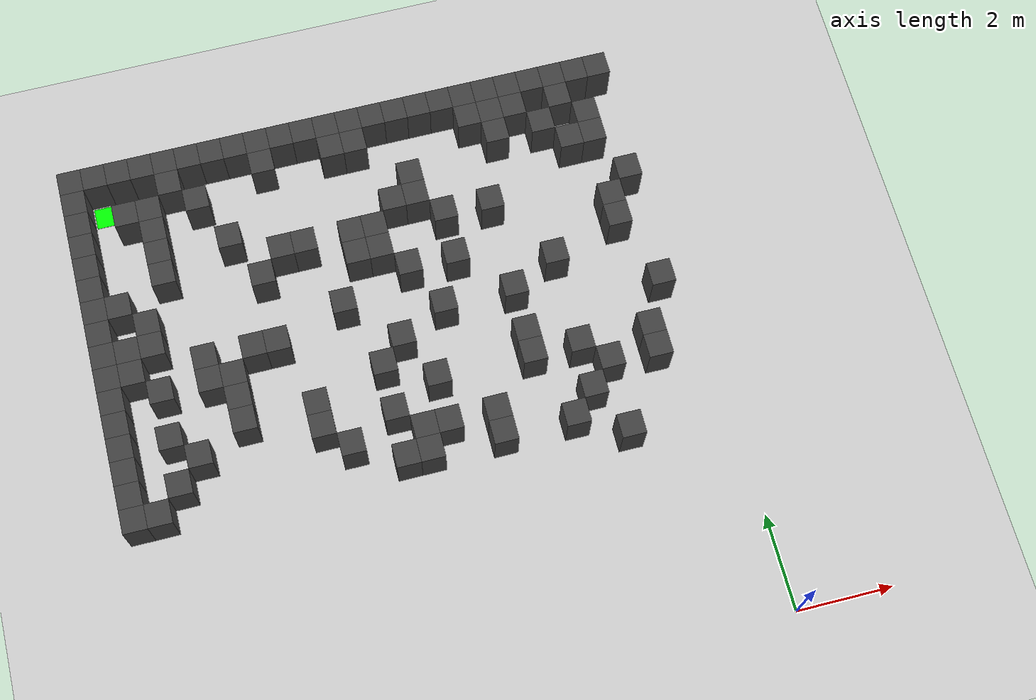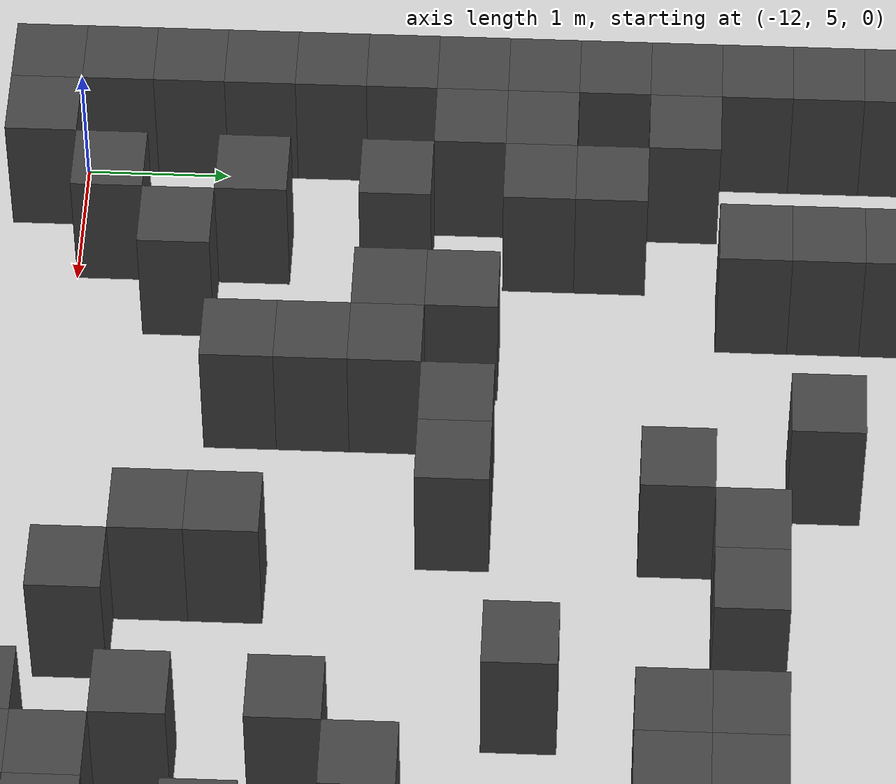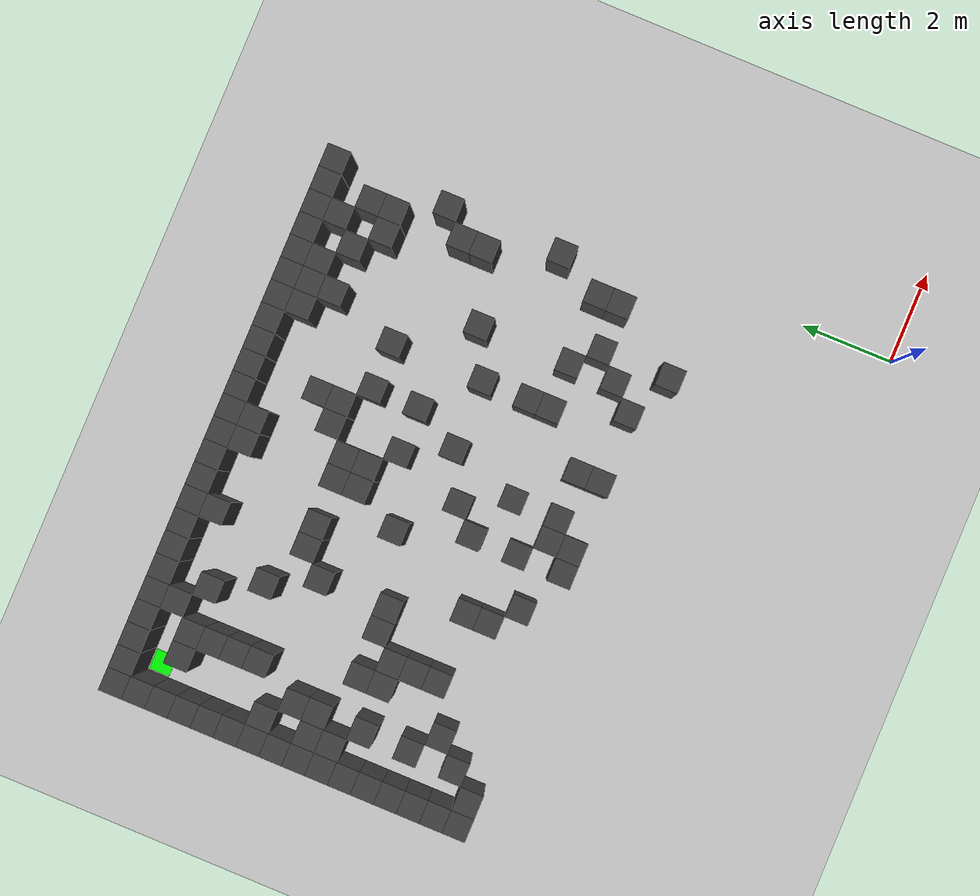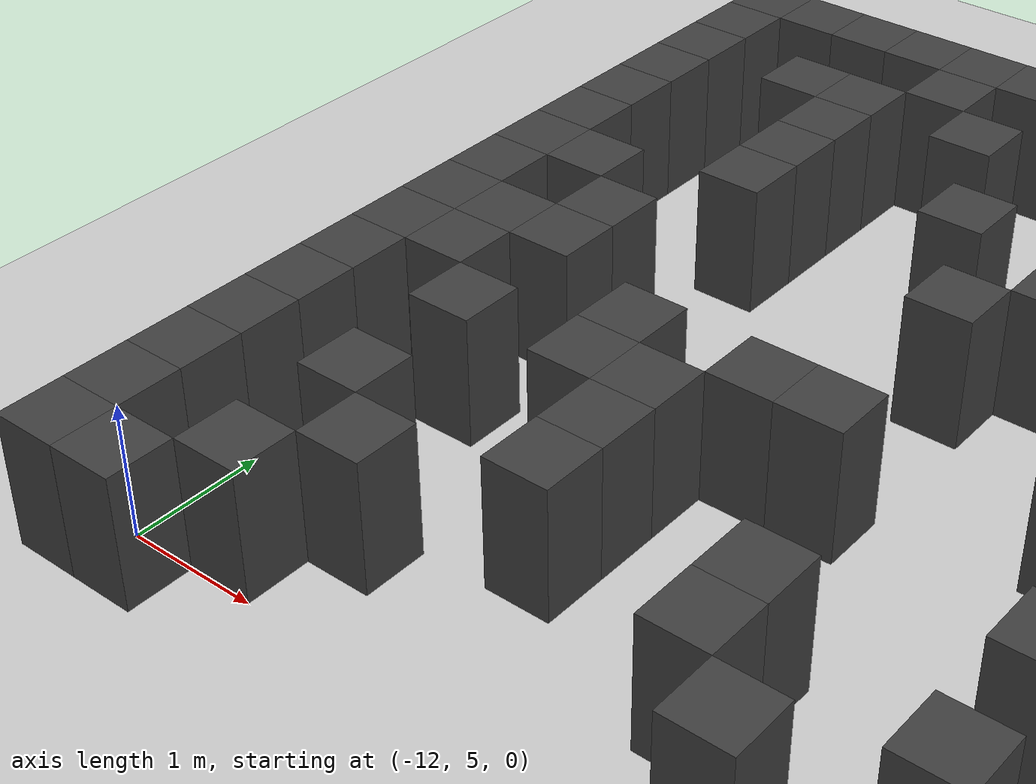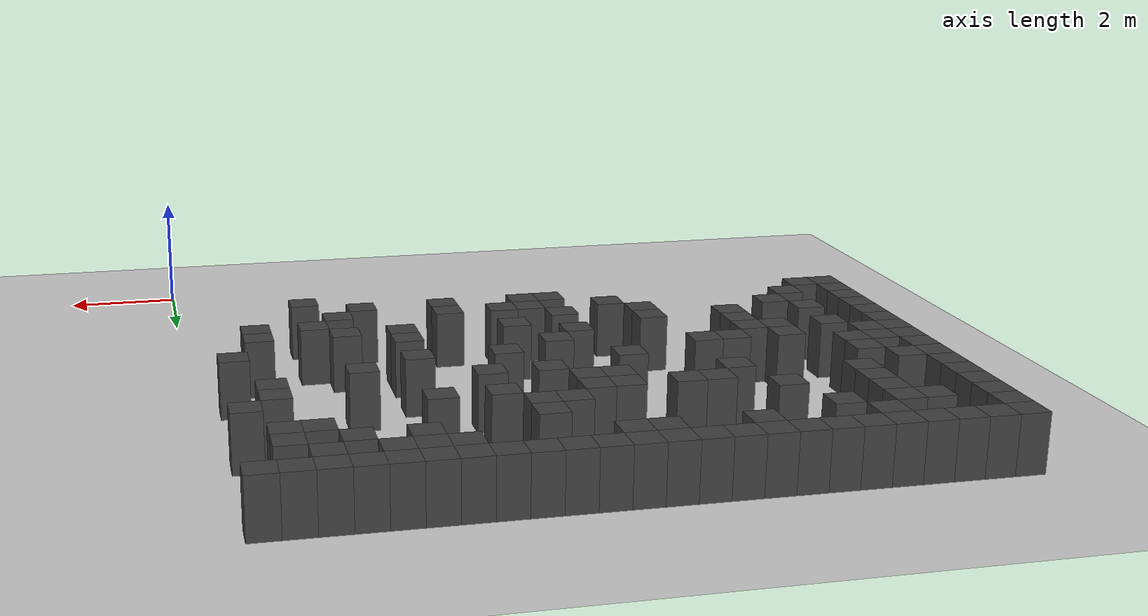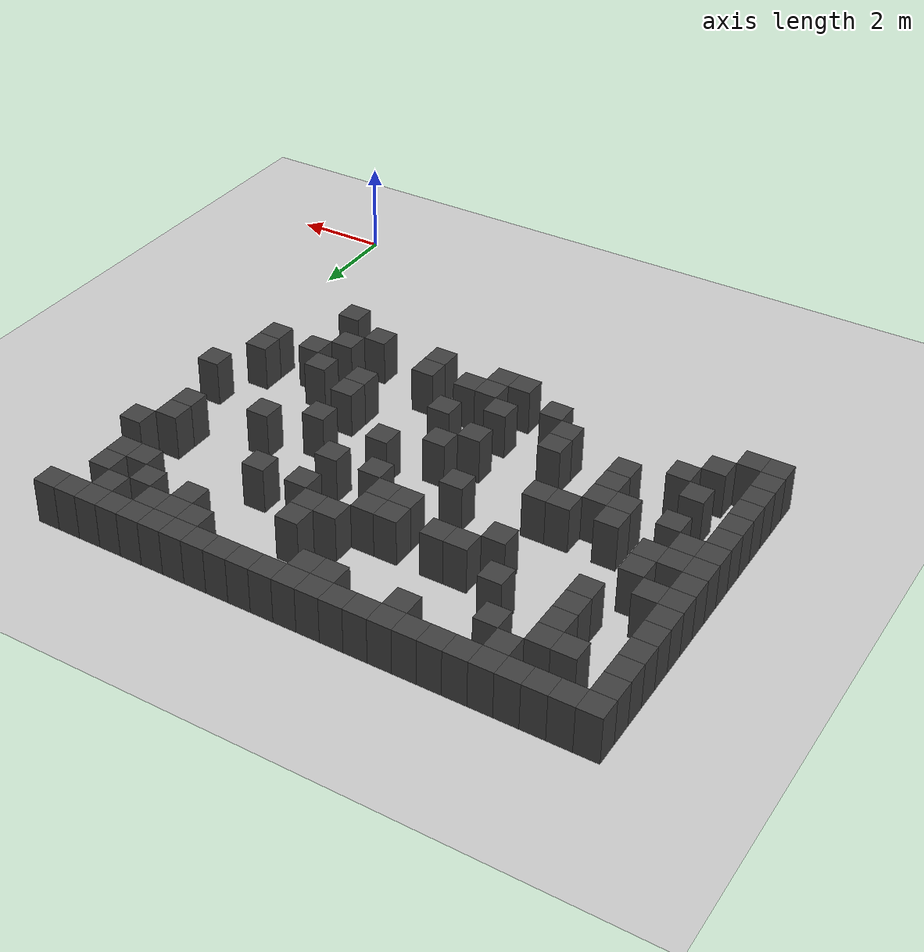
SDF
<sdf version="1.7">
 <world name="map_4752">
  <model name="ground_plane">
   <static>true</static>
   <link name="link">
    <collision name="collision">
     <geometry><plane><normal>0 0 1</normal><size>200 200</size></plane></geometry>
    </collision>
    <visual name="visual">
     <geometry><plane><normal>0 0 1</normal><size>200 200</size></plane></geometry>
     <material><ambient>0.8 0.8 0.8 1</ambient><diffuse>0.8 0.8 0.8 1</diffuse></material>
    </visual>
   </link>
  </model>
  <model name="maze_environment">
   <static>true</static>
   <link name="wall_0">
    <pose>-12.250 12.250 0.500 0 0 0</pose>
    <collision name="col"><geometry><box><size>0.5 0.5 1.0</size></box></geometry></collision>
    <visual name="vis">
     <geometry><box><size>0.5 0.5 1.0</size></box></geometry>
     <material><ambient>0.15 0.15 0.15 1</ambient><diffuse>0.25 0.25 0.25 1</diffuse></material>
    </visual>
   </link>
   <link name="wall_1">
    <pose>-11.750 12.250 0.500 0 0 0</pose>
    <collision name="col"><geometry><box><size>0.5 0.5 1.0</size></box></geometry></collision>
    <visual name="vis">
     <geometry><box><size>0.5 0.5 1.0</size></box></geometry>
     <material><ambient>0.15 0.15 0.15 1</ambient><diffuse>0.25 0.25 0.25 1</diffuse></material>
    </visual>
   </link>
   <link name="wall_2">
    <pose>-11.250 12.250 0.500 0 0 0</pose>
    <collision name="col"><geometry><box><size>0.5 0.5 1.0</size></box></geometry></collision>
    <visual name="vis">
     <geometry><box><size>0.5 0.5 1.0</size></box></geometry>
     <material><ambient>0.15 0.15 0.15 1</ambient><diffuse>0.25 0.25 0.25 1</diffuse></material>
    </visual>
   </link>
   <link name="wall_3">
    <pose>-10.750 12.250 0.500 0 0 0</pose>
    <collision name="col"><geometry><box><size>0.5 0.5 1.0</size></box></geometry></collision>
    <visual name="vis">
     <geometry><box><size>0.5 0.5 1.0</size></box></geometry>
     <material><ambient>0.15 0.15 0.15 1</ambient><diffuse>0.25 0.25 0.25 1</diffuse></material>
    </visual>
   </link>
   <link name="wall_4">
    <pose>-10.250 12.250 0.500 0 0 0</pose>
    <collision name="col"><geometry><box><size>0.5 0.5 1.0</size></box></geometry></collision>
    <visual name="vis">
     <geometry><box><size>0.5 0.5 1.0</size></box></geometry>
     <material><ambient>0.15 0.15 0.15 1</ambient><diffuse>0.25 0.25 0.25 1</diffuse></material>
    </visual>
   </link>
   <link name="wall_5">
    <pose>-9.750 12.250 0.500 0 0 0</pose>
    <collision name="col"><geometry><box><size>0.5 0.5 1.0</size></box></geometry></collision>
    <visual name="vis">
     <geometry><box><size>0.5 0.5 1.0</size></box></geometry>
     <material><ambient>0.15 0.15 0.15 1</ambient><diffuse>0.25 0.25 0.25 1</diffuse></material>
    </visual>
   </link>
   <link name="wall_6">
    <pose>-9.250 12.250 0.500 0 0 0</pose>
    <collision name="col"><geometry><box><size>0.5 0.5 1.0</size></box></geometry></collision>
    <visual name="vis">
     <geometry><box><size>0.5 0.5 1.0</size></box></geometry>
     <material><ambient>0.15 0.15 0.15 1</ambient><diffuse>0.25 0.25 0.25 1</diffuse></material>
    </visual>
   </link>
   <link name="wall_7">
    <pose>-8.750 12.250 0.500 0 0 0</pose>
    <collision name="col"><geometry><box><size>0.5 0.5 1.0</size></box></geometry></collision>
    <visual name="vis">
     <geometry><box><size>0.5 0.5 1.0</size></box></geometry>
     <material><ambient>0.15 0.15 0.15 1</ambient><diffuse>0.25 0.25 0.25 1</diffuse></material>
    </visual>
   </link>
   <link name="wall_8">
    <pose>-8.250 12.250 0.500 0 0 0</pose>
    <collision name="col"><geometry><box><size>0.5 0.5 1.0</size></box></geometry></collision>
    <visual name="vis">
     <geometry><box><size>0.5 0.5 1.0</size></box></geometry>
     <material><ambient>0.15 0.15 0.15 1</ambient><diffuse>0.25 0.25 0.25 1</diffuse></material>
    </visual>
   </link>
   <link name="wall_9">
    <pose>-7.750 12.250 0.500 0 0 0</pose>
    <collision name="col"><geometry><box><size>0.5 0.5 1.0</size></box></geometry></collision>
    <visual name="vis">
     <geometry><box><size>0.5 0.5 1.0</size></box></geometry>
     <material><ambient>0.15 0.15 0.15 1</ambient><diffuse>0.25 0.25 0.25 1</diffuse></material>
    </visual>
   </link>
   <link name="wall_10">
    <pose>-7.250 12.250 0.500 0 0 0</pose>
    <collision name="col"><geometry><box><size>0.5 0.5 1.0</size></box></geometry></collision>
    <visual name="vis">
     <geometry><box><size>0.5 0.5 1.0</size></box></geometry>
     <material><ambient>0.15 0.15 0.15 1</ambient><diffuse>0.25 0.25 0.25 1</diffuse></material>
    </visual>
   </link>
   <link name="wall_11">
    <pose>-6.750 12.250 0.500 0 0 0</pose>
    <collision name="col"><geometry><box><size>0.5 0.5 1.0</size></box></geometry></collision>
    <visual name="vis">
     <geometry><box><size>0.5 0.5 1.0</size></box></geometry>
     <material><ambient>0.15 0.15 0.15 1</ambient><diffuse>0.25 0.25 0.25 1</diffuse></material>
    </visual>
   </link>
   <link name="wall_12">
    <pose>-6.250 12.250 0.500 0 0 0</pose>
    <collision name="col"><geometry><box><size>0.5 0.5 1.0</size></box></geometry></collision>
    <visual name="vis">
     <geometry><box><size>0.5 0.5 1.0</size></box></geometry>
     <material><ambient>0.15 0.15 0.15 1</ambient><diffuse>0.25 0.25 0.25 1</diffuse></material>
    </visual>
   </link>
   <link name="wall_13">
    <pose>-5.750 12.250 0.500 0 0 0</pose>
    <collision name="col"><geometry><box><size>0.5 0.5 1.0</size></box></geometry></collision>
    <visual name="vis">
     <geometry><box><size>0.5 0.5 1.0</size></box></geometry>
     <material><ambient>0.15 0.15 0.15 1</ambient><diffuse>0.25 0.25 0.25 1</diffuse></material>
    </visual>
   </link>
   <link name="wall_14">
    <pose>-5.250 12.250 0.500 0 0 0</pose>
    <collision name="col"><geometry><box><size>0.5 0.5 1.0</size></box></geometry></collision>
    <visual name="vis">
     <geometry><box><size>0.5 0.5 1.0</size></box></geometry>
     <material><ambient>0.15 0.15 0.15 1</ambient><diffuse>0.25 0.25 0.25 1</diffuse></material>
    </visual>
   </link>
   <link name="wall_15">
    <pose>-4.750 12.250 0.500 0 0 0</pose>
    <collision name="col"><geometry><box><size>0.5 0.5 1.0</size></box></geometry></collision>
    <visual name="vis">
     <geometry><box><size>0.5 0.5 1.0</size></box></geometry>
     <material><ambient>0.15 0.15 0.15 1</ambient><diffuse>0.25 0.25 0.25 1</diffuse></material>
    </visual>
   </link>
   <link name="wall_16">
    <pose>-4.250 12.250 0.500 0 0 0</pose>
    <collision name="col"><geometry><box><size>0.5 0.5 1.0</size></box></geometry></collision>
    <visual name="vis">
     <geometry><box><size>0.5 0.5 1.0</size></box></geometry>
     <material><ambient>0.15 0.15 0.15 1</ambient><diffuse>0.25 0.25 0.25 1</diffuse></material>
    </visual>
   </link>
   <link name="wall_17">
    <pose>-3.750 12.250 0.500 0 0 0</pose>
    <collision name="col"><geometry><box><size>0.5 0.5 1.0</size></box></geometry></collision>
    <visual name="vis">
     <geometry><box><size>0.5 0.5 1.0</size></box></geometry>
     <material><ambient>0.15 0.15 0.15 1</ambient><diffuse>0.25 0.25 0.25 1</diffuse></material>
    </visual>
   </link>
   <link name="wall_18">
    <pose>-3.250 12.250 0.500 0 0 0</pose>
    <collision name="col"><geometry><box><size>0.5 0.5 1.0</size></box></geometry></collision>
    <visual name="vis">
     <geometry><box><size>0.5 0.5 1.0</size></box></geometry>
     <material><ambient>0.15 0.15 0.15 1</ambient><diffuse>0.25 0.25 0.25 1</diffuse></material>
    </visual>
   </link>
   <link name="wall_19">
    <pose>-2.750 12.250 0.500 0 0 0</pose>
    <collision name="col"><geometry><box><size>0.5 0.5 1.0</size></box></geometry></collision>
    <visual name="vis">
     <geometry><box><size>0.5 0.5 1.0</size></box></geometry>
     <material><ambient>0.15 0.15 0.15 1</ambient><diffuse>0.25 0.25 0.25 1</diffuse></material>
    </visual>
   </link>
   <link name="wall_20">
    <pose>-2.250 12.250 0.500 0 0 0</pose>
    <collision name="col"><geometry><box><size>0.5 0.5 1.0</size></box></geometry></collision>
    <visual name="vis">
     <geometry><box><size>0.5 0.5 1.0</size></box></geometry>
     <material><ambient>0.15 0.15 0.15 1</ambient><diffuse>0.25 0.25 0.25 1</diffuse></material>
    </visual>
   </link>
   <link name="wall_21">
    <pose>-1.750 12.250 0.500 0 0 0</pose>
    <collision name="col"><geometry><box><size>0.5 0.5 1.0</size></box></geometry></collision>
    <visual name="vis">
     <geometry><box><size>0.5 0.5 1.0</size></box></geometry>
     <material><ambient>0.15 0.15 0.15 1</ambient><diffuse>0.25 0.25 0.25 1</diffuse></material>
    </visual>
   </link>
   <link name="wall_22">
    <pose>-1.250 12.250 0.500 0 0 0</pose>
    <collision name="col"><geometry><box><size>0.5 0.5 1.0</size></box></geometry></collision>
    <visual name="vis">
     <geometry><box><size>0.5 0.5 1.0</size></box></geometry>
     <material><ambient>0.15 0.15 0.15 1</ambient><diffuse>0.25 0.25 0.25 1</diffuse></material>
    </visual>
   </link>
   <link name="wall_23">
    <pose>-0.750 12.250 0.500 0 0 0</pose>
    <collision name="col"><geometry><box><size>0.5 0.5 1.0</size></box></geometry></collision>
    <visual name="vis">
     <geometry><box><size>0.5 0.5 1.0</size></box></geometry>
     <material><ambient>0.15 0.15 0.15 1</ambient><diffuse>0.25 0.25 0.25 1</diffuse></material>
    </visual>
   </link>
   <link name="wall_50">
    <pose>-12.250 11.750 0.500 0 0 0</pose>
    <collision name="col"><geometry><box><size>0.5 0.5 1.0</size></box></geometry></collision>
    <visual name="vis">
     <geometry><box><size>0.5 0.5 1.0</size></box></geometry>
     <material><ambient>0.15 0.15 0.15 1</ambient><diffuse>0.25 0.25 0.25 1</diffuse></material>
    </visual>
   </link>
   <link name="wall_51">
    <pose>-10.250 11.750 0.500 0 0 0</pose>
    <collision name="col"><geometry><box><size>0.5 0.5 1.0</size></box></geometry></collision>
    <visual name="vis">
     <geometry><box><size>0.5 0.5 1.0</size></box></geometry>
     <material><ambient>0.15 0.15 0.15 1</ambient><diffuse>0.25 0.25 0.25 1</diffuse></material>
    </visual>
   </link>
   <link name="wall_52">
    <pose>-8.250 11.750 0.500 0 0 0</pose>
    <collision name="col"><geometry><box><size>0.5 0.5 1.0</size></box></geometry></collision>
    <visual name="vis">
     <geometry><box><size>0.5 0.5 1.0</size></box></geometry>
     <material><ambient>0.15 0.15 0.15 1</ambient><diffuse>0.25 0.25 0.25 1</diffuse></material>
    </visual>
   </link>
   <link name="wall_53">
    <pose>-6.750 11.750 0.500 0 0 0</pose>
    <collision name="col"><geometry><box><size>0.5 0.5 1.0</size></box></geometry></collision>
    <visual name="vis">
     <geometry><box><size>0.5 0.5 1.0</size></box></geometry>
     <material><ambient>0.15 0.15 0.15 1</ambient><diffuse>0.25 0.25 0.25 1</diffuse></material>
    </visual>
   </link>
   <link name="wall_54">
    <pose>-6.250 11.750 0.500 0 0 0</pose>
    <collision name="col"><geometry><box><size>0.5 0.5 1.0</size></box></geometry></collision>
    <visual name="vis">
     <geometry><box><size>0.5 0.5 1.0</size></box></geometry>
     <material><ambient>0.15 0.15 0.15 1</ambient><diffuse>0.25 0.25 0.25 1</diffuse></material>
    </visual>
   </link>
   <link name="wall_55">
    <pose>-3.750 11.750 0.500 0 0 0</pose>
    <collision name="col"><geometry><box><size>0.5 0.5 1.0</size></box></geometry></collision>
    <visual name="vis">
     <geometry><box><size>0.5 0.5 1.0</size></box></geometry>
     <material><ambient>0.15 0.15 0.15 1</ambient><diffuse>0.25 0.25 0.25 1</diffuse></material>
    </visual>
   </link>
   <link name="wall_56">
    <pose>-3.250 11.750 0.500 0 0 0</pose>
    <collision name="col"><geometry><box><size>0.5 0.5 1.0</size></box></geometry></collision>
    <visual name="vis">
     <geometry><box><size>0.5 0.5 1.0</size></box></geometry>
     <material><ambient>0.15 0.15 0.15 1</ambient><diffuse>0.25 0.25 0.25 1</diffuse></material>
    </visual>
   </link>
   <link name="wall_57">
    <pose>-2.750 11.750 0.500 0 0 0</pose>
    <collision name="col"><geometry><box><size>0.5 0.5 1.0</size></box></geometry></collision>
    <visual name="vis">
     <geometry><box><size>0.5 0.5 1.0</size></box></geometry>
     <material><ambient>0.15 0.15 0.15 1</ambient><diffuse>0.25 0.25 0.25 1</diffuse></material>
    </visual>
   </link>
   <link name="wall_58">
    <pose>-1.750 11.750 0.500 0 0 0</pose>
    <collision name="col"><geometry><box><size>0.5 0.5 1.0</size></box></geometry></collision>
    <visual name="vis">
     <geometry><box><size>0.5 0.5 1.0</size></box></geometry>
     <material><ambient>0.15 0.15 0.15 1</ambient><diffuse>0.25 0.25 0.25 1</diffuse></material>
    </visual>
   </link>
   <link name="wall_64">
    <pose>-12.250 11.250 0.500 0 0 0</pose>
    <collision name="col"><geometry><box><size>0.5 0.5 1.0</size></box></geometry></collision>
    <visual name="vis">
     <geometry><box><size>0.5 0.5 1.0</size></box></geometry>
     <material><ambient>0.15 0.15 0.15 1</ambient><diffuse>0.25 0.25 0.25 1</diffuse></material>
    </visual>
   </link>
   <link name="wall_65">
    <pose>-11.250 11.250 0.500 0 0 0</pose>
    <collision name="col"><geometry><box><size>0.5 0.5 1.0</size></box></geometry></collision>
    <visual name="vis">
     <geometry><box><size>0.5 0.5 1.0</size></box></geometry>
     <material><ambient>0.15 0.15 0.15 1</ambient><diffuse>0.25 0.25 0.25 1</diffuse></material>
    </visual>
   </link>
   <link name="wall_66">
    <pose>-10.750 11.250 0.500 0 0 0</pose>
    <collision name="col"><geometry><box><size>0.5 0.5 1.0</size></box></geometry></collision>
    <visual name="vis">
     <geometry><box><size>0.5 0.5 1.0</size></box></geometry>
     <material><ambient>0.15 0.15 0.15 1</ambient><diffuse>0.25 0.25 0.25 1</diffuse></material>
    </visual>
   </link>
   <link name="wall_67">
    <pose>-9.750 11.250 0.500 0 0 0</pose>
    <collision name="col"><geometry><box><size>0.5 0.5 1.0</size></box></geometry></collision>
    <visual name="vis">
     <geometry><box><size>0.5 0.5 1.0</size></box></geometry>
     <material><ambient>0.15 0.15 0.15 1</ambient><diffuse>0.25 0.25 0.25 1</diffuse></material>
    </visual>
   </link>
   <link name="wall_68">
    <pose>-3.250 11.250 0.500 0 0 0</pose>
    <collision name="col"><geometry><box><size>0.5 0.5 1.0</size></box></geometry></collision>
    <visual name="vis">
     <geometry><box><size>0.5 0.5 1.0</size></box></geometry>
     <material><ambient>0.15 0.15 0.15 1</ambient><diffuse>0.25 0.25 0.25 1</diffuse></material>
    </visual>
   </link>
   <link name="wall_69">
    <pose>-2.250 11.250 0.500 0 0 0</pose>
    <collision name="col"><geometry><box><size>0.5 0.5 1.0</size></box></geometry></collision>
    <visual name="vis">
     <geometry><box><size>0.5 0.5 1.0</size></box></geometry>
     <material><ambient>0.15 0.15 0.15 1</ambient><diffuse>0.25 0.25 0.25 1</diffuse></material>
    </visual>
   </link>
   <link name="wall_70">
    <pose>-1.250 11.250 0.500 0 0 0</pose>
    <collision name="col"><geometry><box><size>0.5 0.5 1.0</size></box></geometry></collision>
    <visual name="vis">
     <geometry><box><size>0.5 0.5 1.0</size></box></geometry>
     <material><ambient>0.15 0.15 0.15 1</ambient><diffuse>0.25 0.25 0.25 1</diffuse></material>
    </visual>
   </link>
   <link name="wall_76">
    <pose>-12.250 10.750 0.500 0 0 0</pose>
    <collision name="col"><geometry><box><size>0.5 0.5 1.0</size></box></geometry></collision>
    <visual name="vis">
     <geometry><box><size>0.5 0.5 1.0</size></box></geometry>
     <material><ambient>0.15 0.15 0.15 1</ambient><diffuse>0.25 0.25 0.25 1</diffuse></material>
    </visual>
   </link>
   <link name="wall_77">
    <pose>-10.750 10.750 0.500 0 0 0</pose>
    <collision name="col"><geometry><box><size>0.5 0.5 1.0</size></box></geometry></collision>
    <visual name="vis">
     <geometry><box><size>0.5 0.5 1.0</size></box></geometry>
     <material><ambient>0.15 0.15 0.15 1</ambient><diffuse>0.25 0.25 0.25 1</diffuse></material>
    </visual>
   </link>
   <link name="wall_78">
    <pose>-5.250 10.750 0.500 0 0 0</pose>
    <collision name="col"><geometry><box><size>0.5 0.5 1.0</size></box></geometry></collision>
    <visual name="vis">
     <geometry><box><size>0.5 0.5 1.0</size></box></geometry>
     <material><ambient>0.15 0.15 0.15 1</ambient><diffuse>0.25 0.25 0.25 1</diffuse></material>
    </visual>
   </link>
   <link name="wall_79">
    <pose>-1.750 10.750 0.500 0 0 0</pose>
    <collision name="col"><geometry><box><size>0.5 0.5 1.0</size></box></geometry></collision>
    <visual name="vis">
     <geometry><box><size>0.5 0.5 1.0</size></box></geometry>
     <material><ambient>0.15 0.15 0.15 1</ambient><diffuse>0.25 0.25 0.25 1</diffuse></material>
    </visual>
   </link>
   <link name="wall_80">
    <pose>-1.250 10.750 0.500 0 0 0</pose>
    <collision name="col"><geometry><box><size>0.5 0.5 1.0</size></box></geometry></collision>
    <visual name="vis">
     <geometry><box><size>0.5 0.5 1.0</size></box></geometry>
     <material><ambient>0.15 0.15 0.15 1</ambient><diffuse>0.25 0.25 0.25 1</diffuse></material>
    </visual>
   </link>
   <link name="wall_84">
    <pose>-12.250 10.250 0.500 0 0 0</pose>
    <collision name="col"><geometry><box><size>0.5 0.5 1.0</size></box></geometry></collision>
    <visual name="vis">
     <geometry><box><size>0.5 0.5 1.0</size></box></geometry>
     <material><ambient>0.15 0.15 0.15 1</ambient><diffuse>0.25 0.25 0.25 1</diffuse></material>
    </visual>
   </link>
   <link name="wall_85">
    <pose>-10.750 10.250 0.500 0 0 0</pose>
    <collision name="col"><geometry><box><size>0.5 0.5 1.0</size></box></geometry></collision>
    <visual name="vis">
     <geometry><box><size>0.5 0.5 1.0</size></box></geometry>
     <material><ambient>0.15 0.15 0.15 1</ambient><diffuse>0.25 0.25 0.25 1</diffuse></material>
    </visual>
   </link>
   <link name="wall_86">
    <pose>-9.250 10.250 0.500 0 0 0</pose>
    <collision name="col"><geometry><box><size>0.5 0.5 1.0</size></box></geometry></collision>
    <visual name="vis">
     <geometry><box><size>0.5 0.5 1.0</size></box></geometry>
     <material><ambient>0.15 0.15 0.15 1</ambient><diffuse>0.25 0.25 0.25 1</diffuse></material>
    </visual>
   </link>
   <link name="wall_87">
    <pose>-5.750 10.250 0.500 0 0 0</pose>
    <collision name="col"><geometry><box><size>0.5 0.5 1.0</size></box></geometry></collision>
    <visual name="vis">
     <geometry><box><size>0.5 0.5 1.0</size></box></geometry>
     <material><ambient>0.15 0.15 0.15 1</ambient><diffuse>0.25 0.25 0.25 1</diffuse></material>
    </visual>
   </link>
   <link name="wall_88">
    <pose>-5.250 10.250 0.500 0 0 0</pose>
    <collision name="col"><geometry><box><size>0.5 0.5 1.0</size></box></geometry></collision>
    <visual name="vis">
     <geometry><box><size>0.5 0.5 1.0</size></box></geometry>
     <material><ambient>0.15 0.15 0.15 1</ambient><diffuse>0.25 0.25 0.25 1</diffuse></material>
    </visual>
   </link>
   <link name="wall_97">
    <pose>-12.250 9.750 0.500 0 0 0</pose>
    <collision name="col"><geometry><box><size>0.5 0.5 1.0</size></box></geometry></collision>
    <visual name="vis">
     <geometry><box><size>0.5 0.5 1.0</size></box></geometry>
     <material><ambient>0.15 0.15 0.15 1</ambient><diffuse>0.25 0.25 0.25 1</diffuse></material>
    </visual>
   </link>
   <link name="wall_98">
    <pose>-10.750 9.750 0.500 0 0 0</pose>
    <collision name="col"><geometry><box><size>0.5 0.5 1.0</size></box></geometry></collision>
    <visual name="vis">
     <geometry><box><size>0.5 0.5 1.0</size></box></geometry>
     <material><ambient>0.15 0.15 0.15 1</ambient><diffuse>0.25 0.25 0.25 1</diffuse></material>
    </visual>
   </link>
   <link name="wall_99">
    <pose>-8.250 9.750 0.500 0 0 0</pose>
    <collision name="col"><geometry><box><size>0.5 0.5 1.0</size></box></geometry></collision>
    <visual name="vis">
     <geometry><box><size>0.5 0.5 1.0</size></box></geometry>
     <material><ambient>0.15 0.15 0.15 1</ambient><diffuse>0.25 0.25 0.25 1</diffuse></material>
    </visual>
   </link>
   <link name="wall_100">
    <pose>-7.750 9.750 0.500 0 0 0</pose>
    <collision name="col"><geometry><box><size>0.5 0.5 1.0</size></box></geometry></collision>
    <visual name="vis">
     <geometry><box><size>0.5 0.5 1.0</size></box></geometry>
     <material><ambient>0.15 0.15 0.15 1</ambient><diffuse>0.25 0.25 0.25 1</diffuse></material>
    </visual>
   </link>
   <link name="wall_101">
    <pose>-6.750 9.750 0.500 0 0 0</pose>
    <collision name="col"><geometry><box><size>0.5 0.5 1.0</size></box></geometry></collision>
    <visual name="vis">
     <geometry><box><size>0.5 0.5 1.0</size></box></geometry>
     <material><ambient>0.15 0.15 0.15 1</ambient><diffuse>0.25 0.25 0.25 1</diffuse></material>
    </visual>
   </link>
   <link name="wall_102">
    <pose>-6.250 9.750 0.500 0 0 0</pose>
    <collision name="col"><geometry><box><size>0.5 0.5 1.0</size></box></geometry></collision>
    <visual name="vis">
     <geometry><box><size>0.5 0.5 1.0</size></box></geometry>
     <material><ambient>0.15 0.15 0.15 1</ambient><diffuse>0.25 0.25 0.25 1</diffuse></material>
    </visual>
   </link>
   <link name="wall_103">
    <pose>-4.750 9.750 0.500 0 0 0</pose>
    <collision name="col"><geometry><box><size>0.5 0.5 1.0</size></box></geometry></collision>
    <visual name="vis">
     <geometry><box><size>0.5 0.5 1.0</size></box></geometry>
     <material><ambient>0.15 0.15 0.15 1</ambient><diffuse>0.25 0.25 0.25 1</diffuse></material>
    </visual>
   </link>
   <link name="wall_104">
    <pose>-3.750 9.750 0.500 0 0 0</pose>
    <collision name="col"><geometry><box><size>0.5 0.5 1.0</size></box></geometry></collision>
    <visual name="vis">
     <geometry><box><size>0.5 0.5 1.0</size></box></geometry>
     <material><ambient>0.15 0.15 0.15 1</ambient><diffuse>0.25 0.25 0.25 1</diffuse></material>
    </visual>
   </link>
   <link name="wall_105">
    <pose>-0.750 9.750 0.500 0 0 0</pose>
    <collision name="col"><geometry><box><size>0.5 0.5 1.0</size></box></geometry></collision>
    <visual name="vis">
     <geometry><box><size>0.5 0.5 1.0</size></box></geometry>
     <material><ambient>0.15 0.15 0.15 1</ambient><diffuse>0.25 0.25 0.25 1</diffuse></material>
    </visual>
   </link>
   <link name="wall_115">
    <pose>-12.250 9.250 0.500 0 0 0</pose>
    <collision name="col"><geometry><box><size>0.5 0.5 1.0</size></box></geometry></collision>
    <visual name="vis">
     <geometry><box><size>0.5 0.5 1.0</size></box></geometry>
     <material><ambient>0.15 0.15 0.15 1</ambient><diffuse>0.25 0.25 0.25 1</diffuse></material>
    </visual>
   </link>
   <link name="wall_116">
    <pose>-11.750 9.250 0.500 0 0 0</pose>
    <collision name="col"><geometry><box><size>0.5 0.5 1.0</size></box></geometry></collision>
    <visual name="vis">
     <geometry><box><size>0.5 0.5 1.0</size></box></geometry>
     <material><ambient>0.15 0.15 0.15 1</ambient><diffuse>0.25 0.25 0.25 1</diffuse></material>
    </visual>
   </link>
   <link name="wall_117">
    <pose>-8.750 9.250 0.500 0 0 0</pose>
    <collision name="col"><geometry><box><size>0.5 0.5 1.0</size></box></geometry></collision>
    <visual name="vis">
     <geometry><box><size>0.5 0.5 1.0</size></box></geometry>
     <material><ambient>0.15 0.15 0.15 1</ambient><diffuse>0.25 0.25 0.25 1</diffuse></material>
    </visual>
   </link>
   <link name="wall_118">
    <pose>-6.750 9.250 0.500 0 0 0</pose>
    <collision name="col"><geometry><box><size>0.5 0.5 1.0</size></box></geometry></collision>
    <visual name="vis">
     <geometry><box><size>0.5 0.5 1.0</size></box></geometry>
     <material><ambient>0.15 0.15 0.15 1</ambient><diffuse>0.25 0.25 0.25 1</diffuse></material>
    </visual>
   </link>
   <link name="wall_119">
    <pose>-6.250 9.250 0.500 0 0 0</pose>
    <collision name="col"><geometry><box><size>0.5 0.5 1.0</size></box></geometry></collision>
    <visual name="vis">
     <geometry><box><size>0.5 0.5 1.0</size></box></geometry>
     <material><ambient>0.15 0.15 0.15 1</ambient><diffuse>0.25 0.25 0.25 1</diffuse></material>
    </visual>
   </link>
   <link name="wall_120">
    <pose>-1.250 9.250 0.500 0 0 0</pose>
    <collision name="col"><geometry><box><size>0.5 0.5 1.0</size></box></geometry></collision>
    <visual name="vis">
     <geometry><box><size>0.5 0.5 1.0</size></box></geometry>
     <material><ambient>0.15 0.15 0.15 1</ambient><diffuse>0.25 0.25 0.25 1</diffuse></material>
    </visual>
   </link>
   <link name="wall_126">
    <pose>-12.250 8.750 0.500 0 0 0</pose>
    <collision name="col"><geometry><box><size>0.5 0.5 1.0</size></box></geometry></collision>
    <visual name="vis">
     <geometry><box><size>0.5 0.5 1.0</size></box></geometry>
     <material><ambient>0.15 0.15 0.15 1</ambient><diffuse>0.25 0.25 0.25 1</diffuse></material>
    </visual>
   </link>
   <link name="wall_127">
    <pose>-11.250 8.750 0.500 0 0 0</pose>
    <collision name="col"><geometry><box><size>0.5 0.5 1.0</size></box></geometry></collision>
    <visual name="vis">
     <geometry><box><size>0.5 0.5 1.0</size></box></geometry>
     <material><ambient>0.15 0.15 0.15 1</ambient><diffuse>0.25 0.25 0.25 1</diffuse></material>
    </visual>
   </link>
   <link name="wall_128">
    <pose>-5.750 8.750 0.500 0 0 0</pose>
    <collision name="col"><geometry><box><size>0.5 0.5 1.0</size></box></geometry></collision>
    <visual name="vis">
     <geometry><box><size>0.5 0.5 1.0</size></box></geometry>
     <material><ambient>0.15 0.15 0.15 1</ambient><diffuse>0.25 0.25 0.25 1</diffuse></material>
    </visual>
   </link>
   <link name="wall_129">
    <pose>-4.750 8.750 0.500 0 0 0</pose>
    <collision name="col"><geometry><box><size>0.5 0.5 1.0</size></box></geometry></collision>
    <visual name="vis">
     <geometry><box><size>0.5 0.5 1.0</size></box></geometry>
     <material><ambient>0.15 0.15 0.15 1</ambient><diffuse>0.25 0.25 0.25 1</diffuse></material>
    </visual>
   </link>
   <link name="wall_130">
    <pose>-1.250 8.750 0.500 0 0 0</pose>
    <collision name="col"><geometry><box><size>0.5 0.5 1.0</size></box></geometry></collision>
    <visual name="vis">
     <geometry><box><size>0.5 0.5 1.0</size></box></geometry>
     <material><ambient>0.15 0.15 0.15 1</ambient><diffuse>0.25 0.25 0.25 1</diffuse></material>
    </visual>
   </link>
   <link name="wall_137">
    <pose>-12.250 8.250 0.500 0 0 0</pose>
    <collision name="col"><geometry><box><size>0.5 0.5 1.0</size></box></geometry></collision>
    <visual name="vis">
     <geometry><box><size>0.5 0.5 1.0</size></box></geometry>
     <material><ambient>0.15 0.15 0.15 1</ambient><diffuse>0.25 0.25 0.25 1</diffuse></material>
    </visual>
   </link>
   <link name="wall_138">
    <pose>-11.750 8.250 0.500 0 0 0</pose>
    <collision name="col"><geometry><box><size>0.5 0.5 1.0</size></box></geometry></collision>
    <visual name="vis">
     <geometry><box><size>0.5 0.5 1.0</size></box></geometry>
     <material><ambient>0.15 0.15 0.15 1</ambient><diffuse>0.25 0.25 0.25 1</diffuse></material>
    </visual>
   </link>
   <link name="wall_139">
    <pose>-11.250 8.250 0.500 0 0 0</pose>
    <collision name="col"><geometry><box><size>0.5 0.5 1.0</size></box></geometry></collision>
    <visual name="vis">
     <geometry><box><size>0.5 0.5 1.0</size></box></geometry>
     <material><ambient>0.15 0.15 0.15 1</ambient><diffuse>0.25 0.25 0.25 1</diffuse></material>
    </visual>
   </link>
   <link name="wall_140">
    <pose>-7.250 8.250 0.500 0 0 0</pose>
    <collision name="col"><geometry><box><size>0.5 0.5 1.0</size></box></geometry></collision>
    <visual name="vis">
     <geometry><box><size>0.5 0.5 1.0</size></box></geometry>
     <material><ambient>0.15 0.15 0.15 1</ambient><diffuse>0.25 0.25 0.25 1</diffuse></material>
    </visual>
   </link>
   <link name="wall_141">
    <pose>-2.750 8.250 0.500 0 0 0</pose>
    <collision name="col"><geometry><box><size>0.5 0.5 1.0</size></box></geometry></collision>
    <visual name="vis">
     <geometry><box><size>0.5 0.5 1.0</size></box></geometry>
     <material><ambient>0.15 0.15 0.15 1</ambient><diffuse>0.25 0.25 0.25 1</diffuse></material>
    </visual>
   </link>
   <link name="wall_150">
    <pose>-12.250 7.750 0.500 0 0 0</pose>
    <collision name="col"><geometry><box><size>0.5 0.5 1.0</size></box></geometry></collision>
    <visual name="vis">
     <geometry><box><size>0.5 0.5 1.0</size></box></geometry>
     <material><ambient>0.15 0.15 0.15 1</ambient><diffuse>0.25 0.25 0.25 1</diffuse></material>
    </visual>
   </link>
   <link name="wall_151">
    <pose>-11.750 7.750 0.500 0 0 0</pose>
    <collision name="col"><geometry><box><size>0.5 0.5 1.0</size></box></geometry></collision>
    <visual name="vis">
     <geometry><box><size>0.5 0.5 1.0</size></box></geometry>
     <material><ambient>0.15 0.15 0.15 1</ambient><diffuse>0.25 0.25 0.25 1</diffuse></material>
    </visual>
   </link>
   <link name="wall_152">
    <pose>-10.250 7.750 0.500 0 0 0</pose>
    <collision name="col"><geometry><box><size>0.5 0.5 1.0</size></box></geometry></collision>
    <visual name="vis">
     <geometry><box><size>0.5 0.5 1.0</size></box></geometry>
     <material><ambient>0.15 0.15 0.15 1</ambient><diffuse>0.25 0.25 0.25 1</diffuse></material>
    </visual>
   </link>
   <link name="wall_153">
    <pose>-9.250 7.750 0.500 0 0 0</pose>
    <collision name="col"><geometry><box><size>0.5 0.5 1.0</size></box></geometry></collision>
    <visual name="vis">
     <geometry><box><size>0.5 0.5 1.0</size></box></geometry>
     <material><ambient>0.15 0.15 0.15 1</ambient><diffuse>0.25 0.25 0.25 1</diffuse></material>
    </visual>
   </link>
   <link name="wall_154">
    <pose>-8.750 7.750 0.500 0 0 0</pose>
    <collision name="col"><geometry><box><size>0.5 0.5 1.0</size></box></geometry></collision>
    <visual name="vis">
     <geometry><box><size>0.5 0.5 1.0</size></box></geometry>
     <material><ambient>0.15 0.15 0.15 1</ambient><diffuse>0.25 0.25 0.25 1</diffuse></material>
    </visual>
   </link>
   <link name="wall_155">
    <pose>-5.250 7.750 0.500 0 0 0</pose>
    <collision name="col"><geometry><box><size>0.5 0.5 1.0</size></box></geometry></collision>
    <visual name="vis">
     <geometry><box><size>0.5 0.5 1.0</size></box></geometry>
     <material><ambient>0.15 0.15 0.15 1</ambient><diffuse>0.25 0.25 0.25 1</diffuse></material>
    </visual>
   </link>
   <link name="wall_156">
    <pose>-3.750 7.750 0.500 0 0 0</pose>
    <collision name="col"><geometry><box><size>0.5 0.5 1.0</size></box></geometry></collision>
    <visual name="vis">
     <geometry><box><size>0.5 0.5 1.0</size></box></geometry>
     <material><ambient>0.15 0.15 0.15 1</ambient><diffuse>0.25 0.25 0.25 1</diffuse></material>
    </visual>
   </link>
   <link name="wall_166">
    <pose>-12.250 7.250 0.500 0 0 0</pose>
    <collision name="col"><geometry><box><size>0.5 0.5 1.0</size></box></geometry></collision>
    <visual name="vis">
     <geometry><box><size>0.5 0.5 1.0</size></box></geometry>
     <material><ambient>0.15 0.15 0.15 1</ambient><diffuse>0.25 0.25 0.25 1</diffuse></material>
    </visual>
   </link>
   <link name="wall_167">
    <pose>-11.250 7.250 0.500 0 0 0</pose>
    <collision name="col"><geometry><box><size>0.5 0.5 1.0</size></box></geometry></collision>
    <visual name="vis">
     <geometry><box><size>0.5 0.5 1.0</size></box></geometry>
     <material><ambient>0.15 0.15 0.15 1</ambient><diffuse>0.25 0.25 0.25 1</diffuse></material>
    </visual>
   </link>
   <link name="wall_168">
    <pose>-10.250 7.250 0.500 0 0 0</pose>
    <collision name="col"><geometry><box><size>0.5 0.5 1.0</size></box></geometry></collision>
    <visual name="vis">
     <geometry><box><size>0.5 0.5 1.0</size></box></geometry>
     <material><ambient>0.15 0.15 0.15 1</ambient><diffuse>0.25 0.25 0.25 1</diffuse></material>
    </visual>
   </link>
   <link name="wall_169">
    <pose>-9.750 7.250 0.500 0 0 0</pose>
    <collision name="col"><geometry><box><size>0.5 0.5 1.0</size></box></geometry></collision>
    <visual name="vis">
     <geometry><box><size>0.5 0.5 1.0</size></box></geometry>
     <material><ambient>0.15 0.15 0.15 1</ambient><diffuse>0.25 0.25 0.25 1</diffuse></material>
    </visual>
   </link>
   <link name="wall_170">
    <pose>-6.250 7.250 0.500 0 0 0</pose>
    <collision name="col"><geometry><box><size>0.5 0.5 1.0</size></box></geometry></collision>
    <visual name="vis">
     <geometry><box><size>0.5 0.5 1.0</size></box></geometry>
     <material><ambient>0.15 0.15 0.15 1</ambient><diffuse>0.25 0.25 0.25 1</diffuse></material>
    </visual>
   </link>
   <link name="wall_171">
    <pose>-0.750 7.250 0.500 0 0 0</pose>
    <collision name="col"><geometry><box><size>0.5 0.5 1.0</size></box></geometry></collision>
    <visual name="vis">
     <geometry><box><size>0.5 0.5 1.0</size></box></geometry>
     <material><ambient>0.15 0.15 0.15 1</ambient><diffuse>0.25 0.25 0.25 1</diffuse></material>
    </visual>
   </link>
   <link name="wall_177">
    <pose>-12.250 6.750 0.500 0 0 0</pose>
    <collision name="col"><geometry><box><size>0.5 0.5 1.0</size></box></geometry></collision>
    <visual name="vis">
     <geometry><box><size>0.5 0.5 1.0</size></box></geometry>
     <material><ambient>0.15 0.15 0.15 1</ambient><diffuse>0.25 0.25 0.25 1</diffuse></material>
    </visual>
   </link>
   <link name="wall_178">
    <pose>-9.750 6.750 0.500 0 0 0</pose>
    <collision name="col"><geometry><box><size>0.5 0.5 1.0</size></box></geometry></collision>
    <visual name="vis">
     <geometry><box><size>0.5 0.5 1.0</size></box></geometry>
     <material><ambient>0.15 0.15 0.15 1</ambient><diffuse>0.25 0.25 0.25 1</diffuse></material>
    </visual>
   </link>
   <link name="wall_179">
    <pose>-6.750 6.750 0.500 0 0 0</pose>
    <collision name="col"><geometry><box><size>0.5 0.5 1.0</size></box></geometry></collision>
    <visual name="vis">
     <geometry><box><size>0.5 0.5 1.0</size></box></geometry>
     <material><ambient>0.15 0.15 0.15 1</ambient><diffuse>0.25 0.25 0.25 1</diffuse></material>
    </visual>
   </link>
   <link name="wall_180">
    <pose>-3.750 6.750 0.500 0 0 0</pose>
    <collision name="col"><geometry><box><size>0.5 0.5 1.0</size></box></geometry></collision>
    <visual name="vis">
     <geometry><box><size>0.5 0.5 1.0</size></box></geometry>
     <material><ambient>0.15 0.15 0.15 1</ambient><diffuse>0.25 0.25 0.25 1</diffuse></material>
    </visual>
   </link>
   <link name="wall_188">
    <pose>-12.250 6.250 0.500 0 0 0</pose>
    <collision name="col"><geometry><box><size>0.5 0.5 1.0</size></box></geometry></collision>
    <visual name="vis">
     <geometry><box><size>0.5 0.5 1.0</size></box></geometry>
     <material><ambient>0.15 0.15 0.15 1</ambient><diffuse>0.25 0.25 0.25 1</diffuse></material>
    </visual>
   </link>
   <link name="wall_189">
    <pose>-11.250 6.250 0.500 0 0 0</pose>
    <collision name="col"><geometry><box><size>0.5 0.5 1.0</size></box></geometry></collision>
    <visual name="vis">
     <geometry><box><size>0.5 0.5 1.0</size></box></geometry>
     <material><ambient>0.15 0.15 0.15 1</ambient><diffuse>0.25 0.25 0.25 1</diffuse></material>
    </visual>
   </link>
   <link name="wall_190">
    <pose>-9.750 6.250 0.500 0 0 0</pose>
    <collision name="col"><geometry><box><size>0.5 0.5 1.0</size></box></geometry></collision>
    <visual name="vis">
     <geometry><box><size>0.5 0.5 1.0</size></box></geometry>
     <material><ambient>0.15 0.15 0.15 1</ambient><diffuse>0.25 0.25 0.25 1</diffuse></material>
    </visual>
   </link>
   <link name="wall_191">
    <pose>-8.250 6.250 0.500 0 0 0</pose>
    <collision name="col"><geometry><box><size>0.5 0.5 1.0</size></box></geometry></collision>
    <visual name="vis">
     <geometry><box><size>0.5 0.5 1.0</size></box></geometry>
     <material><ambient>0.15 0.15 0.15 1</ambient><diffuse>0.25 0.25 0.25 1</diffuse></material>
    </visual>
   </link>
   <link name="wall_192">
    <pose>-5.750 6.250 0.500 0 0 0</pose>
    <collision name="col"><geometry><box><size>0.5 0.5 1.0</size></box></geometry></collision>
    <visual name="vis">
     <geometry><box><size>0.5 0.5 1.0</size></box></geometry>
     <material><ambient>0.15 0.15 0.15 1</ambient><diffuse>0.25 0.25 0.25 1</diffuse></material>
    </visual>
   </link>
   <link name="wall_193">
    <pose>-3.750 6.250 0.500 0 0 0</pose>
    <collision name="col"><geometry><box><size>0.5 0.5 1.0</size></box></geometry></collision>
    <visual name="vis">
     <geometry><box><size>0.5 0.5 1.0</size></box></geometry>
     <material><ambient>0.15 0.15 0.15 1</ambient><diffuse>0.25 0.25 0.25 1</diffuse></material>
    </visual>
   </link>
   <link name="wall_194">
    <pose>-2.750 6.250 0.500 0 0 0</pose>
    <collision name="col"><geometry><box><size>0.5 0.5 1.0</size></box></geometry></collision>
    <visual name="vis">
     <geometry><box><size>0.5 0.5 1.0</size></box></geometry>
     <material><ambient>0.15 0.15 0.15 1</ambient><diffuse>0.25 0.25 0.25 1</diffuse></material>
    </visual>
   </link>
   <link name="wall_195">
    <pose>-1.250 6.250 0.500 0 0 0</pose>
    <collision name="col"><geometry><box><size>0.5 0.5 1.0</size></box></geometry></collision>
    <visual name="vis">
     <geometry><box><size>0.5 0.5 1.0</size></box></geometry>
     <material><ambient>0.15 0.15 0.15 1</ambient><diffuse>0.25 0.25 0.25 1</diffuse></material>
    </visual>
   </link>
   <link name="wall_208">
    <pose>-12.250 5.750 0.500 0 0 0</pose>
    <collision name="col"><geometry><box><size>0.5 0.5 1.0</size></box></geometry></collision>
    <visual name="vis">
     <geometry><box><size>0.5 0.5 1.0</size></box></geometry>
     <material><ambient>0.15 0.15 0.15 1</ambient><diffuse>0.25 0.25 0.25 1</diffuse></material>
    </visual>
   </link>
   <link name="wall_209">
    <pose>-10.750 5.750 0.500 0 0 0</pose>
    <collision name="col"><geometry><box><size>0.5 0.5 1.0</size></box></geometry></collision>
    <visual name="vis">
     <geometry><box><size>0.5 0.5 1.0</size></box></geometry>
     <material><ambient>0.15 0.15 0.15 1</ambient><diffuse>0.25 0.25 0.25 1</diffuse></material>
    </visual>
   </link>
   <link name="wall_210">
    <pose>-8.250 5.750 0.500 0 0 0</pose>
    <collision name="col"><geometry><box><size>0.5 0.5 1.0</size></box></geometry></collision>
    <visual name="vis">
     <geometry><box><size>0.5 0.5 1.0</size></box></geometry>
     <material><ambient>0.15 0.15 0.15 1</ambient><diffuse>0.25 0.25 0.25 1</diffuse></material>
    </visual>
   </link>
   <link name="wall_211">
    <pose>-6.750 5.750 0.500 0 0 0</pose>
    <collision name="col"><geometry><box><size>0.5 0.5 1.0</size></box></geometry></collision>
    <visual name="vis">
     <geometry><box><size>0.5 0.5 1.0</size></box></geometry>
     <material><ambient>0.15 0.15 0.15 1</ambient><diffuse>0.25 0.25 0.25 1</diffuse></material>
    </visual>
   </link>
   <link name="wall_212">
    <pose>-2.250 5.750 0.500 0 0 0</pose>
    <collision name="col"><geometry><box><size>0.5 0.5 1.0</size></box></geometry></collision>
    <visual name="vis">
     <geometry><box><size>0.5 0.5 1.0</size></box></geometry>
     <material><ambient>0.15 0.15 0.15 1</ambient><diffuse>0.25 0.25 0.25 1</diffuse></material>
    </visual>
   </link>
   <link name="wall_213">
    <pose>-1.250 5.750 0.500 0 0 0</pose>
    <collision name="col"><geometry><box><size>0.5 0.5 1.0</size></box></geometry></collision>
    <visual name="vis">
     <geometry><box><size>0.5 0.5 1.0</size></box></geometry>
     <material><ambient>0.15 0.15 0.15 1</ambient><diffuse>0.25 0.25 0.25 1</diffuse></material>
    </visual>
   </link>
   <link name="wall_221">
    <pose>-12.250 5.250 0.500 0 0 0</pose>
    <collision name="col"><geometry><box><size>0.5 0.5 1.0</size></box></geometry></collision>
    <visual name="vis">
     <geometry><box><size>0.5 0.5 1.0</size></box></geometry>
     <material><ambient>0.15 0.15 0.15 1</ambient><diffuse>0.25 0.25 0.25 1</diffuse></material>
    </visual>
   </link>
   <link name="wall_222">
    <pose>-11.250 5.250 0.500 0 0 0</pose>
    <collision name="col"><geometry><box><size>0.5 0.5 1.0</size></box></geometry></collision>
    <visual name="vis">
     <geometry><box><size>0.5 0.5 1.0</size></box></geometry>
     <material><ambient>0.15 0.15 0.15 1</ambient><diffuse>0.25 0.25 0.25 1</diffuse></material>
    </visual>
   </link>
   <link name="wall_223">
    <pose>-7.750 5.250 0.500 0 0 0</pose>
    <collision name="col"><geometry><box><size>0.5 0.5 1.0</size></box></geometry></collision>
    <visual name="vis">
     <geometry><box><size>0.5 0.5 1.0</size></box></geometry>
     <material><ambient>0.15 0.15 0.15 1</ambient><diffuse>0.25 0.25 0.25 1</diffuse></material>
    </visual>
   </link>
   <link name="wall_224">
    <pose>-6.250 5.250 0.500 0 0 0</pose>
    <collision name="col"><geometry><box><size>0.5 0.5 1.0</size></box></geometry></collision>
    <visual name="vis">
     <geometry><box><size>0.5 0.5 1.0</size></box></geometry>
     <material><ambient>0.15 0.15 0.15 1</ambient><diffuse>0.25 0.25 0.25 1</diffuse></material>
    </visual>
   </link>
   <link name="wall_225">
    <pose>-5.750 5.250 0.500 0 0 0</pose>
    <collision name="col"><geometry><box><size>0.5 0.5 1.0</size></box></geometry></collision>
    <visual name="vis">
     <geometry><box><size>0.5 0.5 1.0</size></box></geometry>
     <material><ambient>0.15 0.15 0.15 1</ambient><diffuse>0.25 0.25 0.25 1</diffuse></material>
    </visual>
   </link>
   <link name="wall_226">
    <pose>-4.750 5.250 0.500 0 0 0</pose>
    <collision name="col"><geometry><box><size>0.5 0.5 1.0</size></box></geometry></collision>
    <visual name="vis">
     <geometry><box><size>0.5 0.5 1.0</size></box></geometry>
     <material><ambient>0.15 0.15 0.15 1</ambient><diffuse>0.25 0.25 0.25 1</diffuse></material>
    </visual>
   </link>
   <link name="wall_227">
    <pose>-2.750 5.250 0.500 0 0 0</pose>
    <collision name="col"><geometry><box><size>0.5 0.5 1.0</size></box></geometry></collision>
    <visual name="vis">
     <geometry><box><size>0.5 0.5 1.0</size></box></geometry>
     <material><ambient>0.15 0.15 0.15 1</ambient><diffuse>0.25 0.25 0.25 1</diffuse></material>
    </visual>
   </link>
   <link name="wall_231">
    <pose>-12.250 4.750 0.500 0 0 0</pose>
    <collision name="col"><geometry><box><size>0.5 0.5 1.0</size></box></geometry></collision>
    <visual name="vis">
     <geometry><box><size>0.5 0.5 1.0</size></box></geometry>
     <material><ambient>0.15 0.15 0.15 1</ambient><diffuse>0.25 0.25 0.25 1</diffuse></material>
    </visual>
   </link>
   <link name="wall_232">
    <pose>-11.750 4.750 0.500 0 0 0</pose>
    <collision name="col"><geometry><box><size>0.5 0.5 1.0</size></box></geometry></collision>
    <visual name="vis">
     <geometry><box><size>0.5 0.5 1.0</size></box></geometry>
     <material><ambient>0.15 0.15 0.15 1</ambient><diffuse>0.25 0.25 0.25 1</diffuse></material>
    </visual>
   </link>
   <link name="wall_233">
    <pose>-6.750 4.750 0.500 0 0 0</pose>
    <collision name="col"><geometry><box><size>0.5 0.5 1.0</size></box></geometry></collision>
    <visual name="vis">
     <geometry><box><size>0.5 0.5 1.0</size></box></geometry>
     <material><ambient>0.15 0.15 0.15 1</ambient><diffuse>0.25 0.25 0.25 1</diffuse></material>
    </visual>
   </link>
   <link name="wall_234">
    <pose>-6.250 4.750 0.500 0 0 0</pose>
    <collision name="col"><geometry><box><size>0.5 0.5 1.0</size></box></geometry></collision>
    <visual name="vis">
     <geometry><box><size>0.5 0.5 1.0</size></box></geometry>
     <material><ambient>0.15 0.15 0.15 1</ambient><diffuse>0.25 0.25 0.25 1</diffuse></material>
    </visual>
   </link>
   <link name="wall_235">
    <pose>-4.750 4.750 0.500 0 0 0</pose>
    <collision name="col"><geometry><box><size>0.5 0.5 1.0</size></box></geometry></collision>
    <visual name="vis">
     <geometry><box><size>0.5 0.5 1.0</size></box></geometry>
     <material><ambient>0.15 0.15 0.15 1</ambient><diffuse>0.25 0.25 0.25 1</diffuse></material>
    </visual>
   </link>
   <link name="wall_236">
    <pose>-3.250 4.750 0.500 0 0 0</pose>
    <collision name="col"><geometry><box><size>0.5 0.5 1.0</size></box></geometry></collision>
    <visual name="vis">
     <geometry><box><size>0.5 0.5 1.0</size></box></geometry>
     <material><ambient>0.15 0.15 0.15 1</ambient><diffuse>0.25 0.25 0.25 1</diffuse></material>
    </visual>
   </link>
   <link name="wall_245">
    <pose>-2.250 4.250 0.500 0 0 0</pose>
    <collision name="col"><geometry><box><size>0.5 0.5 1.0</size></box></geometry></collision>
    <visual name="vis">
     <geometry><box><size>0.5 0.5 1.0</size></box></geometry>
     <material><ambient>0.15 0.15 0.15 1</ambient><diffuse>0.25 0.25 0.25 1</diffuse></material>
    </visual>
   </link>
   <link name="start_zone">
    <pose>-11.750 11.750 0.005 0 0 0</pose>
    <visual name="vis">
     <geometry><box><size>0.45 0.45 0.01</size></box></geometry>
     <material>
      <ambient>0.0 1.0 0.0 1</ambient>
      <diffuse>0.0 1.0 0.0 1</diffuse>
      <emissive>0.00 0.60 0.00 1</emissive>
     </material>
    </visual>
   </link>
  </model>
 </world>
</sdf>
